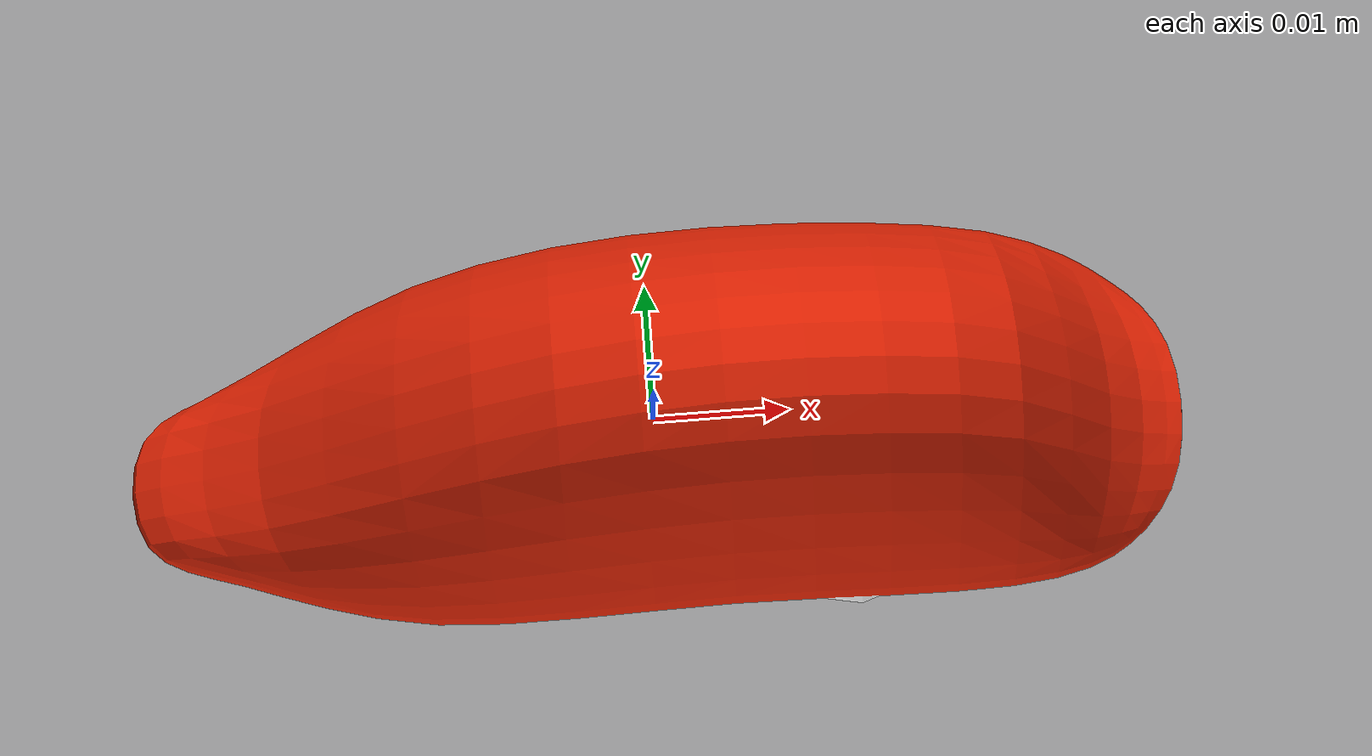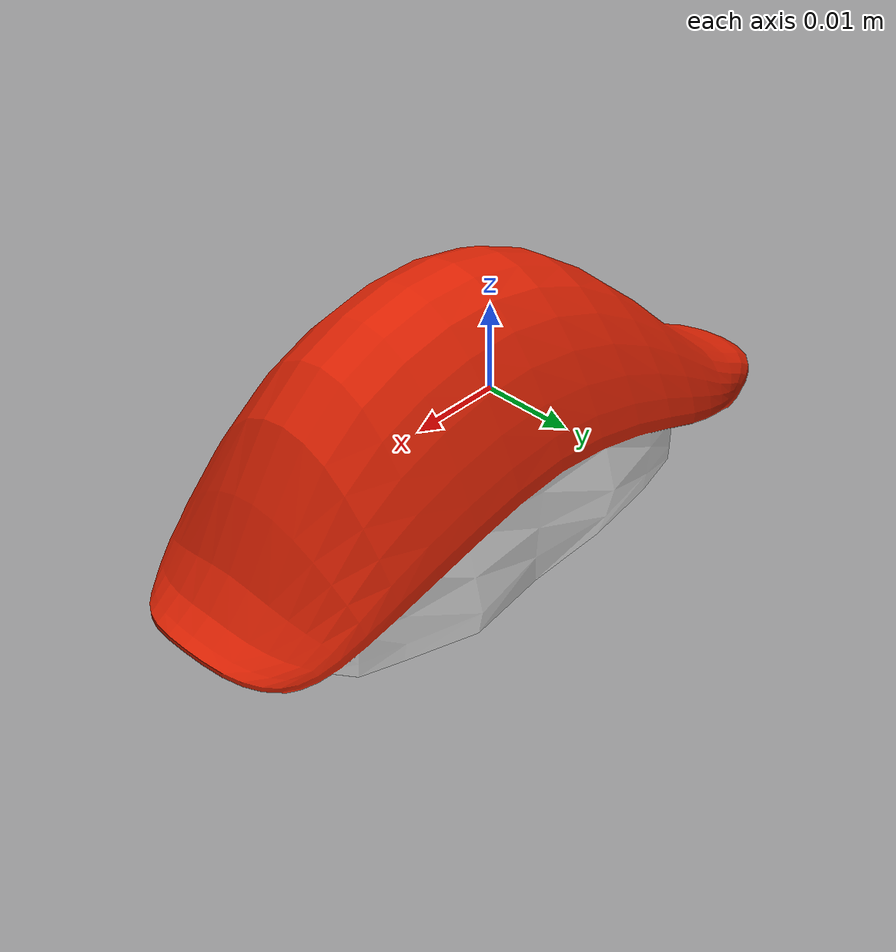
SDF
<?xml version='1.0' ?>
<sdf version='1.6'>
  <model name='SalmonSushi'>
    <static>false</static>
    <link name='link'>
      <!-- 勝手に追加 -->
      <inertial>
        <mass>0.0599</mass>
        <inertia>
          <ixx>0.0003028961527030333</ixx>
          <ixy>0</ixy>
          <ixz>0</ixz>
          <iyy>0.0003028961527030333</iyy>
          <iyz>0</iyz>
          <izz>3.2876352372798436e-05</izz>
        </inertia>
      </inertial>

      <collision name='collision'>
        <geometry>
          <box>
            <size>0.07 0.025 0.025</size>
          </box>
        </geometry>

        <!-- 勝手に追加 -->
        <surface>
          <contact>
            <!-- typical acrylic plastic material properties -->
            <poissons_ratio>0.35</poissons_ratio>
            <elastic_modulus>3.102640776e+09</elastic_modulus>
            <ode>
              <kp>100000</kp>
              <kd>100</kd>
              <max_vel>1.0</max_vel>
              <min_depth>0.001</min_depth>
            </ode>
          </contact>
          <friction>
            <mu>100.0</mu>
            <mu2>100.0</mu2>
            <torsional>
              <coefficient>1.0</coefficient>
              <use_patch_radius>0</use_patch_radius>
              <surface_radius>0.01</surface_radius>
            </torsional>
          </friction>
        </surface>
      </collision>
      <visual name='visual'>
        <pose>0 0 0 1.5708 0 0</pose>
        <geometry>
          <mesh>
            <uri>model://SalmonSushi/meshes/model.dae</uri>
            <scale>4.0 4.0 4.0</scale>
          </mesh>
        </geometry>
      </visual>
    </link>
  </model>
</sdf>
